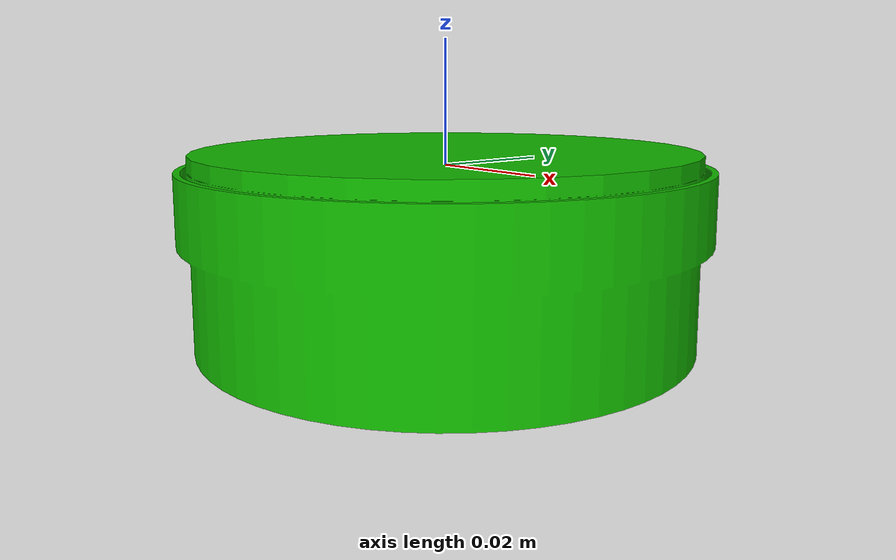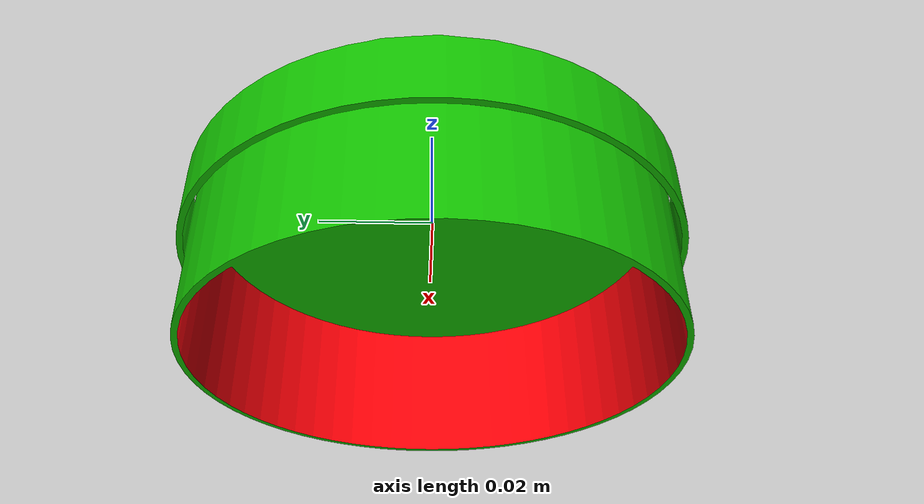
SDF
<?xml version="1.0"?>
<sdf version="1.6">
  <model name="replenish_green_tin">
    <pose>0 0 0 0 0 0</pose>
    <link name="base_link">
      <inertial>
        <pose>0 0 0 0 0 0</pose>
        <mass>0.045</mass>
        <inertia>
          <!-- Calculating the inertia for a cylinder: -->
          <!-- Ixx = Iyy = (1/12) * mass * (3*r^2 + h^2), Izz = (1/2) * mass * r^2 -->
          <ixx>0.0007</ixx> <!-- Updated value based on cylinder dimensions -->
          <ixy>0</ixy>
          <ixz>0</ixz>
          <iyy>0.0007</iyy> <!-- Updated value based on cylinder dimensions -->
          <iyz>0</iyz>
          <izz>0.0001</izz> <!-- Updated value based on cylinder dimensions -->
        </inertia>
      </inertial>
      <visual name="base">
        <pose>0 0 0 3.14159 0 0</pose>
        <geometry>
           <mesh>
            <uri>file://replenish_green_tin/mesh/green_tin.dae</uri>
          </mesh>
        </geometry>
      </visual>
      <collision name="collision_base">
        <pose>0 0 0 0 0 0</pose>
        <geometry>
          <cylinder>
            <radius>0.0421</radius>
            <length>0.03</length>
          </cylinder>
        </geometry>
      </collision>
    </link>
  </model>
</sdf>
